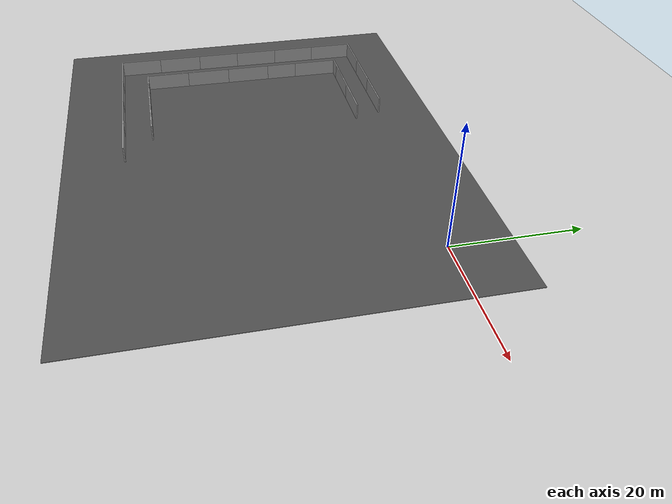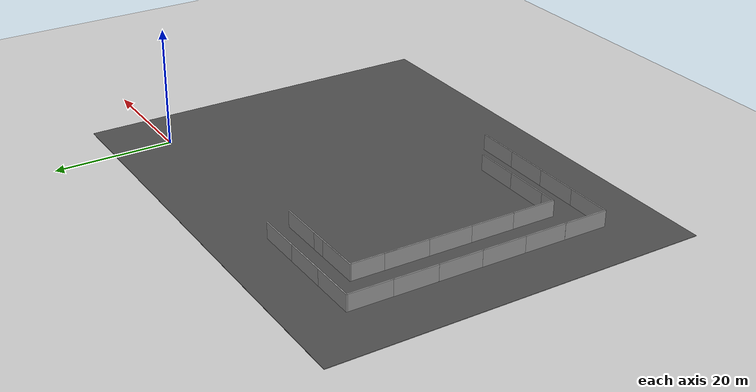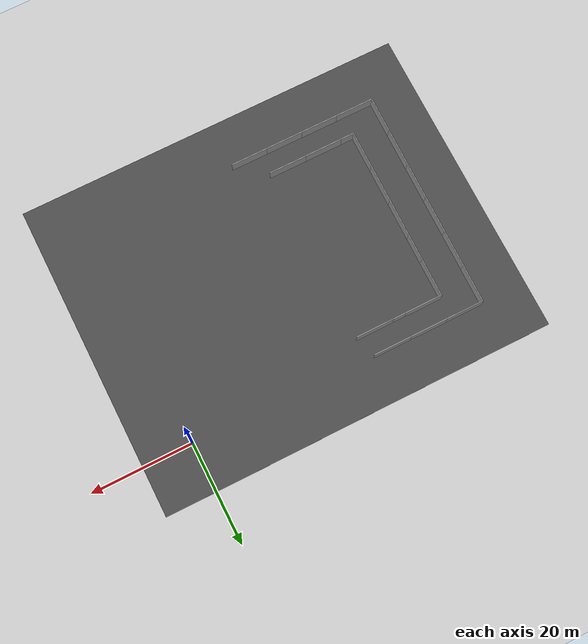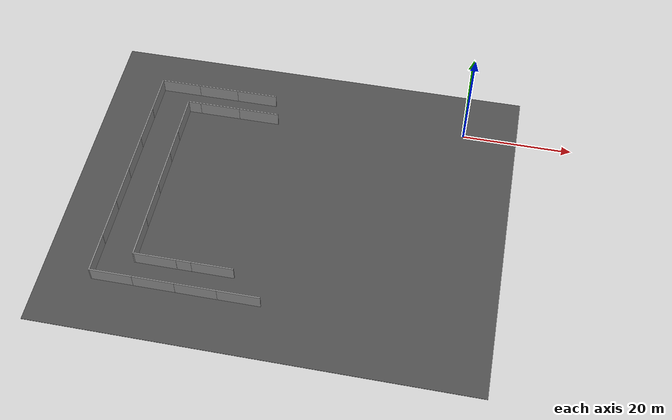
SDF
<sdf version="1.6">
 <world name="default">
  <model name="ground_plane">
   <static>1</static>
   <link name="link">
    <collision name="collision">
     <geometry><plane><normal>0 0 1</normal><size>100 100</size></plane></geometry>
     <surface>
      <contact><collide_bitmask>65535</collide_bitmask></contact>
      <friction><ode><mu>100</mu><mu2>50</mu2></ode></friction>
     </surface>
    </collision>
    <visual name="visual">
     <cast_shadows>0</cast_shadows>
     <geometry><plane><normal>0 0 1</normal><size>100 100</size></plane></geometry>
     <material>
      <script><uri>file://media/materials/scripts/gazebo.material</uri><name>Gazebo/Grey</name></script>
     </material>
    </visual>
   </link>
  </model>
  <model name="asphalt_plane">
   <static>1</static>
   <link name="link">
    <collision name="collision"><geometry><box><size>77.647 62.8353 0.1</size></box></geometry></collision>
    <visual name="visual">
     <cast_shadows>0</cast_shadows>
     <geometry><box><size>77.647 62.8353 0.1</size></box></geometry>
     <material>
      <script>
       <uri>model://asphalt_plane/materials/scripts</uri>
       <uri>model://asphalt_plane/materials/textures</uri>
       <name>vrc/asphalt</name>
      </script>
     </material>
    </visual>
   </link>
   <pose>-28.9718 -21.6905 0 0 -0 0</pose>
  </model>
  <model name="grey_wall_clone_6_clone_8_clone_2">
   <static>1</static>
   <link name="link">
    <pose>0 0 1.4 0 -0 0</pose>
    <collision name="collision"><geometry><box><size>7.5 0.2 2.8</size></box></geometry></collision>
    <visual name="visual">
     <cast_shadows>0</cast_shadows>
     <geometry><box><size>7.5 0.2 2.8</size></box></geometry>
     <material>
      <script>
       <uri>model://grey_wall/materials/scripts</uri>
       <uri>model://grey_wall/materials/textures</uri>
       <name>vrc/grey_wall</name>
      </script>
     </material>
    </visual>
   </link>
   <pose>-39.923 0.810789 0 0 -0 0</pose>
  </model>
  <model name="grey_wall_clone_6_clone_8_clone_3">
   <static>1</static>
   <link name="link">
    <pose>0 0 1.4 0 -0 0</pose>
    <collision name="collision"><geometry><box><size>7.5 0.2 2.8</size></box></geometry></collision>
    <visual name="visual">
     <cast_shadows>0</cast_shadows>
     <geometry><box><size>7.5 0.2 2.8</size></box></geometry>
     <material>
      <script>
       <uri>model://grey_wall/materials/scripts</uri>
       <uri>model://grey_wall/materials/textures</uri>
       <name>vrc/grey_wall</name>
      </script>
     </material>
    </visual>
   </link>
   <pose>-47.34 0.810887 0 0 -0 0</pose>
  </model>
  <model name="grey_wall_clone_6_clone_8_clone_4">
   <static>1</static>
   <link name="link">
    <pose>0 0 1.4 0 -0 0</pose>
    <collision name="collision"><geometry><box><size>7.5 0.2 2.8</size></box></geometry></collision>
    <visual name="visual">
     <cast_shadows>0</cast_shadows>
     <geometry><box><size>7.5 0.2 2.8</size></box></geometry>
     <material>
      <script>
       <uri>model://grey_wall/materials/scripts</uri>
       <uri>model://grey_wall/materials/textures</uri>
       <name>vrc/grey_wall</name>
      </script>
     </material>
    </visual>
   </link>
   <pose>-54.7381 0.815169 0 0 -0 0</pose>
  </model>
  <model name="grey_wall_clone_6_clone_8_clone_5_clone_4">
   <static>1</static>
   <link name="link">
    <pose>0 0 1.4 0 -0 0</pose>
    <collision name="collision"><geometry><box><size>7.5 0.2 2.8</size></box></geometry></collision>
    <visual name="visual">
     <cast_shadows>0</cast_shadows>
     <geometry><box><size>7.5 0.2 2.8</size></box></geometry>
     <material>
      <script>
       <uri>model://grey_wall/materials/scripts</uri>
       <uri>model://grey_wall/materials/textures</uri>
       <name>vrc/grey_wall</name>
      </script>
     </material>
    </visual>
   </link>
   <pose>-58.4152 -2.86807 0 0 -0 1.56305</pose>
  </model>
  <model name="grey_wall_clone_6_clone_8_clone_5_clone_5">
   <static>1</static>
   <link name="link">
    <pose>0 0 1.4 0 -0 0</pose>
    <collision name="collision"><geometry><box><size>7.5 0.2 2.8</size></box></geometry></collision>
    <visual name="visual">
     <cast_shadows>0</cast_shadows>
     <geometry><box><size>7.5 0.2 2.8</size></box></geometry>
     <material>
      <script>
       <uri>model://grey_wall/materials/scripts</uri>
       <uri>model://grey_wall/materials/textures</uri>
       <name>vrc/grey_wall</name>
      </script>
     </material>
    </visual>
   </link>
   <pose>-58.4882 -10.223 0 0 -0 1.56305</pose>
  </model>
  <model name="grey_wall_clone_6_clone_8_clone_5_clone_6">
   <static>1</static>
   <link name="link">
    <pose>0 0 1.4 0 -0 0</pose>
    <collision name="collision"><geometry><box><size>7.5 0.2 2.8</size></box></geometry></collision>
    <visual name="visual">
     <cast_shadows>0</cast_shadows>
     <geometry><box><size>7.5 0.2 2.8</size></box></geometry>
     <material>
      <script>
       <uri>model://grey_wall/materials/scripts</uri>
       <uri>model://grey_wall/materials/textures</uri>
       <name>vrc/grey_wall</name>
      </script>
     </material>
    </visual>
   </link>
   <pose>-58.5488 -17.5992 0 0 -0 1.56305</pose>
  </model>
  <model name="grey_wall_clone_6_clone_8_clone_5_clone_7">
   <static>1</static>
   <link name="link">
    <pose>0 0 1.4 0 -0 0</pose>
    <collision name="collision"><geometry><box><size>7.5 0.2 2.8</size></box></geometry></collision>
    <visual name="visual">
     <cast_shadows>0</cast_shadows>
     <geometry><box><size>7.5 0.2 2.8</size></box></geometry>
     <material>
      <script>
       <uri>model://grey_wall/materials/scripts</uri>
       <uri>model://grey_wall/materials/textures</uri>
       <name>vrc/grey_wall</name>
      </script>
     </material>
    </visual>
   </link>
   <pose>-58.6114 -24.9525 0 0 -0 1.56305</pose>
  </model>
  <model name="grey_wall_clone_6_clone_8_clone_5_clone_8">
   <static>1</static>
   <link name="link">
    <pose>0 0 1.4 0 -0 0</pose>
    <collision name="collision"><geometry><box><size>7.5 0.2 2.8</size></box></geometry></collision>
    <visual name="visual">
     <cast_shadows>0</cast_shadows>
     <geometry><box><size>7.5 0.2 2.8</size></box></geometry>
     <material>
      <script>
       <uri>model://grey_wall/materials/scripts</uri>
       <uri>model://grey_wall/materials/textures</uri>
       <name>vrc/grey_wall</name>
      </script>
     </material>
    </visual>
   </link>
   <pose>-58.6615 -32.4003 0 0 -0 1.56305</pose>
  </model>
  <model name="grey_wall_clone_6_clone_8_clone_5_clone_9">
   <static>1</static>
   <link name="link">
    <pose>0 0 1.4 0 -0 0</pose>
    <collision name="collision"><geometry><box><size>7.5 0.2 2.8</size></box></geometry></collision>
    <visual name="visual">
     <cast_shadows>0</cast_shadows>
     <geometry><box><size>7.5 0.2 2.8</size></box></geometry>
     <material>
      <script>
       <uri>model://grey_wall/materials/scripts</uri>
       <uri>model://grey_wall/materials/textures</uri>
       <name>vrc/grey_wall</name>
      </script>
     </material>
    </visual>
   </link>
   <pose>-58.7297 -39.5971 0 0 -0 1.56305</pose>
  </model>
  <model name="grey_wall_clone_6_clone_8_clone_4_clone">
   <static>1</static>
   <link name="link">
    <pose>0 0 1.4 0 -0 0</pose>
    <collision name="collision"><geometry><box><size>7.5 0.2 2.8</size></box></geometry></collision>
    <visual name="visual">
     <cast_shadows>0</cast_shadows>
     <geometry><box><size>7.5 0.2 2.8</size></box></geometry>
     <material>
      <script>
       <uri>model://grey_wall/materials/scripts</uri>
       <uri>model://grey_wall/materials/textures</uri>
       <name>vrc/grey_wall</name>
      </script>
     </material>
    </visual>
   </link>
   <pose>-54.9361 -43.2608 0 0 -0 0</pose>
  </model>
  <model name="grey_wall_clone_6_clone_8_clone_4_clone_0">
   <static>1</static>
   <link name="link">
    <pose>0 0 1.4 0 -0 0</pose>
    <collision name="collision"><geometry><box><size>7.5 0.2 2.8</size></box></geometry></collision>
    <visual name="visual">
     <cast_shadows>0</cast_shadows>
     <geometry><box><size>7.5 0.2 2.8</size></box></geometry>
     <material>
      <script>
       <uri>model://grey_wall/materials/scripts</uri>
       <uri>model://grey_wall/materials/textures</uri>
       <name>vrc/grey_wall</name>
      </script>
     </material>
    </visual>
   </link>
   <pose>-47.5949 -43.2666 0 0 -0 0</pose>
  </model>
  <model name="grey_wall_clone_6_clone_8_clone_4_clone_1">
   <static>1</static>
   <link name="link">
    <pose>0 0 1.4 0 -0 0</pose>
    <collision name="collision"><geometry><box><size>7.5 0.2 2.8</size></box></geometry></collision>
    <visual name="visual">
     <cast_shadows>0</cast_shadows>
     <geometry><box><size>7.5 0.2 2.8</size></box></geometry>
     <material>
      <script>
       <uri>model://grey_wall/materials/scripts</uri>
       <uri>model://grey_wall/materials/textures</uri>
       <name>vrc/grey_wall</name>
      </script>
     </material>
    </visual>
   </link>
   <pose>-40.2373 -43.2818 0 0 -0 0</pose>
  </model>
  <model name="grey_wall_clone_6_clone_8_clone_4_clone_2">
   <static>1</static>
   <link name="link">
    <pose>0 0 1.4 0 -0 0</pose>
    <collision name="collision"><geometry><box><size>7.5 0.2 2.8</size></box></geometry></collision>
    <visual name="visual">
     <cast_shadows>0</cast_shadows>
     <geometry><box><size>7.5 0.2 2.8</size></box></geometry>
     <material>
      <script>
       <uri>model://grey_wall/materials/scripts</uri>
       <uri>model://grey_wall/materials/textures</uri>
       <name>vrc/grey_wall</name>
      </script>
     </material>
    </visual>
   </link>
   <pose>-32.9116 -43.2839 0 0 -0 0</pose>
  </model>
  <model name="grey_wall_clone_6_clone_8_clone_4_clone_5_clone_2">
   <static>1</static>
   <link name="link">
    <pose>0 0 1.4 0 -0 0</pose>
    <collision name="collision"><geometry><box><size>7.5 0.2 2.8</size></box></geometry></collision>
    <visual name="visual">
     <cast_shadows>0</cast_shadows>
     <geometry><box><size>7.5 0.2 2.8</size></box></geometry>
     <material>
      <script>
       <uri>model://grey_wall/materials/scripts</uri>
       <uri>model://grey_wall/materials/textures</uri>
       <name>vrc/grey_wall</name>
      </script>
     </material>
    </visual>
   </link>
   <pose>-38.5755 -38.6536 0 0 -0 0</pose>
  </model>
  <model name="grey_wall_clone_6_clone_8_clone_4_clone_5_clone_3">
   <static>1</static>
   <link name="link">
    <pose>0 0 1.4 0 -0 0</pose>
    <collision name="collision"><geometry><box><size>7.5 0.2 2.8</size></box></geometry></collision>
    <visual name="visual">
     <cast_shadows>0</cast_shadows>
     <geometry><box><size>7.5 0.2 2.8</size></box></geometry>
     <material>
      <script>
       <uri>model://grey_wall/materials/scripts</uri>
       <uri>model://grey_wall/materials/textures</uri>
       <name>vrc/grey_wall</name>
      </script>
     </material>
    </visual>
   </link>
   <pose>-46.0353 -38.6626 0 0 -0 0</pose>
  </model>
  <model name="grey_wall_clone_6_clone_8_clone_4_clone_5_clone_4">
   <static>1</static>
   <link name="link">
    <pose>0 0 1.4 0 -0 0</pose>
    <collision name="collision"><geometry><box><size>7.5 0.2 2.8</size></box></geometry></collision>
    <visual name="visual">
     <cast_shadows>0</cast_shadows>
     <geometry><box><size>7.5 0.2 2.8</size></box></geometry>
     <material>
      <script>
       <uri>model://grey_wall/materials/scripts</uri>
       <uri>model://grey_wall/materials/textures</uri>
       <name>vrc/grey_wall</name>
      </script>
     </material>
    </visual>
   </link>
   <pose>-48.645 -38.6724 0 0 -0 0</pose>
  </model>
  <model name="grey_wall_clone_6_clone_8_clone_9">
   <static>1</static>
   <link name="link">
    <pose>0 0 1.4 0 -0 0</pose>
    <collision name="collision"><geometry><box><size>7.5 0.2 2.8</size></box></geometry></collision>
    <visual name="visual">
     <cast_shadows>0</cast_shadows>
     <geometry><box><size>7.5 0.2 2.8</size></box></geometry>
     <material>
      <script>
       <uri>model://grey_wall/materials/scripts</uri>
       <uri>model://grey_wall/materials/textures</uri>
       <name>vrc/grey_wall</name>
      </script>
     </material>
    </visual>
   </link>
   <pose>-38.57 -3.5306 0 0 -0 0</pose>
  </model>
  <model name="grey_wall_clone_6_clone_8_clone_10">
   <static>1</static>
   <link name="link">
    <pose>0 0 1.4 0 -0 0</pose>
    <collision name="collision"><geometry><box><size>7.5 0.2 2.8</size></box></geometry></collision>
    <visual name="visual">
     <cast_shadows>0</cast_shadows>
     <geometry><box><size>7.5 0.2 2.8</size></box></geometry>
     <material>
      <script>
       <uri>model://grey_wall/materials/scripts</uri>
       <uri>model://grey_wall/materials/textures</uri>
       <name>vrc/grey_wall</name>
      </script>
     </material>
    </visual>
   </link>
   <pose>-46.052 -3.52358 0 0 -0 0</pose>
  </model>
  <model name="grey_wall_clone_6_clone_8_clone_5_clone_6_clone">
   <static>1</static>
   <link name="link">
    <pose>0 0 1.4 0 -0 0</pose>
    <collision name="collision"><geometry><box><size>7.5 0.2 2.8</size></box></geometry></collision>
    <visual name="visual">
     <cast_shadows>0</cast_shadows>
     <geometry><box><size>7.5 0.2 2.8</size></box></geometry>
     <material>
      <script>
       <uri>model://grey_wall/materials/scripts</uri>
       <uri>model://grey_wall/materials/textures</uri>
       <name>vrc/grey_wall</name>
      </script>
     </material>
    </visual>
   </link>
   <pose>-52.4024 -35.0241 0 0 -0 1.56305</pose>
  </model>
  <model name="grey_wall_clone_6_clone_8_clone_5_clone_6_clone_0">
   <static>1</static>
   <link name="link">
    <pose>0 0 1.4 0 -0 0</pose>
    <collision name="collision"><geometry><box><size>7.5 0.2 2.8</size></box></geometry></collision>
    <visual name="visual">
     <cast_shadows>0</cast_shadows>
     <geometry><box><size>7.5 0.2 2.8</size></box></geometry>
     <material>
      <script>
       <uri>model://grey_wall/materials/scripts</uri>
       <uri>model://grey_wall/materials/textures</uri>
       <name>vrc/grey_wall</name>
      </script>
     </material>
    </visual>
   </link>
   <pose>-52.3559 -27.5513 0 0 -0 1.56305</pose>
  </model>
  <model name="grey_wall_clone_6_clone_8_clone_5_clone_6_clone_1">
   <static>1</static>
   <link name="link">
    <pose>0 0 1.4 0 -0 0</pose>
    <collision name="collision"><geometry><box><size>7.5 0.2 2.8</size></box></geometry></collision>
    <visual name="visual">
     <cast_shadows>0</cast_shadows>
     <geometry><box><size>7.5 0.2 2.8</size></box></geometry>
     <material>
      <script>
       <uri>model://grey_wall/materials/scripts</uri>
       <uri>model://grey_wall/materials/textures</uri>
       <name>vrc/grey_wall</name>
      </script>
     </material>
    </visual>
   </link>
   <pose>-52.3099 -20.0913 0 0 -0 1.56305</pose>
  </model>
  <model name="grey_wall_clone_6_clone_8_clone_5_clone_6_clone_2">
   <static>1</static>
   <link name="link">
    <pose>0 0 1.4 0 -0 0</pose>
    <collision name="collision"><geometry><box><size>7.5 0.2 2.8</size></box></geometry></collision>
    <visual name="visual">
     <cast_shadows>0</cast_shadows>
     <geometry><box><size>7.5 0.2 2.8</size></box></geometry>
     <material>
      <script>
       <uri>model://grey_wall/materials/scripts</uri>
       <uri>model://grey_wall/materials/textures</uri>
       <name>vrc/grey_wall</name>
      </script>
     </material>
    </visual>
   </link>
   <pose>-52.2596 -12.7609 0 0 -0 1.56305</pose>
  </model>
  <model name="grey_wall_clone_6_clone_8_clone_5_clone_6_clone_3">
   <static>1</static>
   <link name="link">
    <pose>0 0 1.4 0 -0 0</pose>
    <collision name="collision"><geometry><box><size>7.5 0.2 2.8</size></box></geometry></collision>
    <visual name="visual">
     <cast_shadows>0</cast_shadows>
     <geometry><box><size>7.5 0.2 2.8</size></box></geometry>
     <material>
      <script>
       <uri>model://grey_wall/materials/scripts</uri>
       <uri>model://grey_wall/materials/textures</uri>
       <name>vrc/grey_wall</name>
      </script>
     </material>
    </visual>
   </link>
   <pose>-52.2028 -7.33068 0 0 -0 1.56305</pose>
  </model>
  <model name="grey_wall_clone_6_clone_8_clone_10_clone">
   <static>1</static>
   <link name="link">
    <pose>0 0 1.4 0 -0 0</pose>
    <collision name="collision"><geometry><box><size>7.5 0.2 2.8</size></box></geometry></collision>
    <visual name="visual">
     <cast_shadows>0</cast_shadows>
     <geometry><box><size>7.5 0.2 2.8</size></box></geometry>
     <material>
      <script>
       <uri>model://grey_wall/materials/scripts</uri>
       <uri>model://grey_wall/materials/textures</uri>
       <name>vrc/grey_wall</name>
      </script>
     </material>
    </visual>
   </link>
   <pose>-48.5505 -3.51917 0 0 -0 0</pose>
  </model>
 </world>
</sdf>
